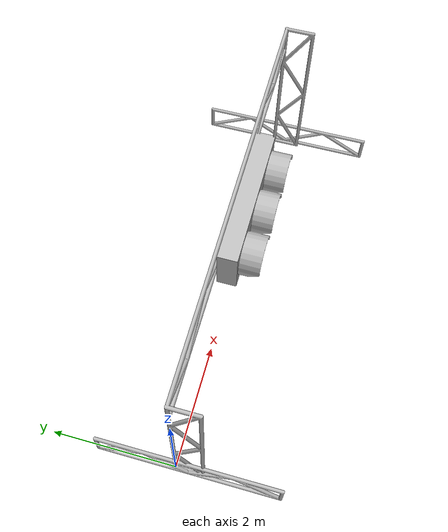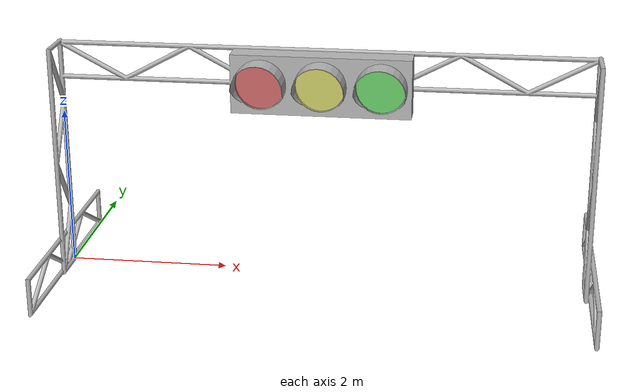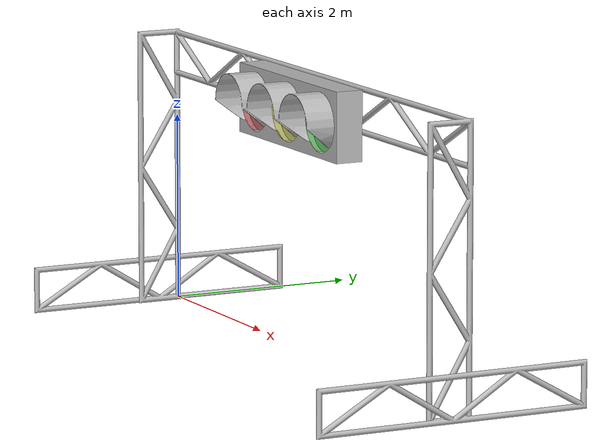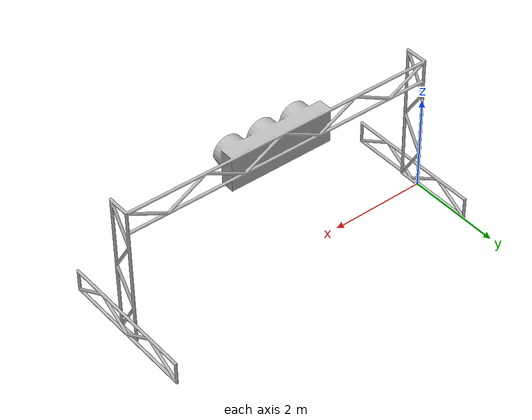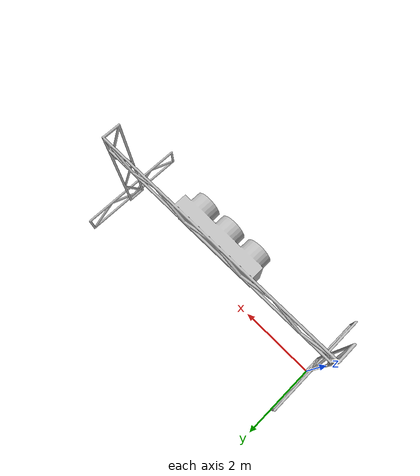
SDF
<?xml version='1.0'?>
<sdf version='1.7'>

  <model name="traffic">
    <static>true</static>

    <!-- 신호등 본체 -->
    <link name="traffic_light_body">
      <visual name="traffic_light_visual">
        <geometry>
          <mesh>
            <uri>model://traffic/meshes/traffic.obj</uri>
            <scale>0.029 0.029 0.029</scale>
          </mesh>
        </geometry>
      </visual>
    </link>

    <!-- 빨간 불빛 -->
    <link name="red_light_link">
      <pose>2.535 -0.28 2.538 1.57 0 0</pose>
      <light name="red_spot" type="spot">
        <pose>0 -0.12 -0.28 2.469999 0 0</pose>
        <attenuation>
          <range>30</range>
          <linear>0.05</linear>
        </attenuation>
        <diffuse>0.5 1 1 1</diffuse>
        <specular>1 1 1 1</specular>
        <spot>
          <inner_angle>0.3</inner_angle>
          <outer_angle>1.35</outer_angle>
          <falloff>1</falloff>
        </spot>
        <direction>0 0 -1</direction>
      </light>

      <visual name="red">
        <geometry>
          <cylinder>
            <radius>0.3</radius>
            <length>0.1</length>
          </cylinder>
          <sphere>
            <radius>0.4</radius>
          </sphere>
        </geometry>
        <transparency>0.6</transparency>
        <material>
          <ambient> 1 0 0 1</ambient>
          <diffuse> 1 0 0 1</diffuse>
          <specular>1 1 1 1</specular>
          <emissive>1 0 0 1</emissive>
      </material>
      </visual>
    </link>

    <!-- 노란 불빛 -->
    <link name="yellow_light_link">
      <pose>3.26 -0.293 2.538 1.57 0 0</pose>
      <light name="yellow_spot" type="spot">
        <pose>0 -0.12 -0.28 2.469999 0 0</pose>
        <attenuation>
          <range>30</range>
          <linear>0.05</linear>
        </attenuation>
        <diffuse>0.5 1 1 1</diffuse>
        <specular>1 1 1 1</specular>
        <spot>
          <inner_angle>0.3</inner_angle>
          <outer_angle>1.35</outer_angle>
          <falloff>1</falloff>
        </spot>
        <direction>0 0 -1</direction>
      </light>
      <visual name="yellow">
        <geometry>
          <cylinder>
            <radius>0.30</radius>
            <length>0.1</length>
          </cylinder>
          <sphere>
            <radius>0.4</radius>
          </sphere>
        </geometry>
        <transparency>0.6</transparency>
        <material>
          <ambient>1 1 0 1</ambient>
          <diffuse>1 1 0 1</diffuse>
          <specular>1 1 1 1</specular>
          <emissive>1 1 0 1 </emissive>
        </material>
      </visual>
    </link>

    <!-- 초록 불빛 -->
    <link name="green_light_link">
      <pose>3.984 -0.28 2.538  1.57 0 0</pose>
      <light name="green_spot" type="spot">
        <pose>0 -0.12 -0.28 2.469999 0 0</pose>
        <attenuation>
          <range>30</range>
          <linear>0.05</linear>
        </attenuation>
        <diffuse>0.5 1 1 1</diffuse>
        <specular>1 1 1 1</specular>
        <spot>
          <inner_angle>0.3</inner_angle>
          <outer_angle>1.35</outer_angle>
          <falloff>1</falloff>
        </spot>
        <direction>0 0 -1</direction>
      </light>

      <visual name="green">
        <geometry>
          <cylinder>
            <radius>0.30</radius>
            <length>0.1</length>
          </cylinder>
          <sphere>
            <radius>0.4</radius>
          </sphere>
        </geometry>
        <transparency>0.6</transparency>
        <material>
          <ambient>0 1 0 1</ambient>
          <diffuse>0 1 0 1</diffuse>
          <specular>1 1 1 1</specular>
          <emissive>0 1 0 1</emissive>
        </material>
      </visual>
    </link>

    <!-- https://classic.gazebosim.org/tutorials?tut=flashlight_plugin -->
    <plugin name="red_light_controller" filename="libLedPlugin.so">
      <enable>true</enable>
      <light>
        <id>red_light_link/red</id>
        <block>
          <duration>5</duration> <!-- 빨간불의 지속 시간 5초 -->
          <interval>0</interval>
          <color>1 0 0</color>   <!-- 빨간색 -->
        </block>
        <block>
          <duration>0</duration>
          <interval>10</interval> <!-- 다음 간격까지 10초 -->
        </block>
        <enable>true</enable>
      </light>
    </plugin>

    <plugin name="yellow_light_controller" filename="libLedPlugin.so">
      <enable>true</enable>
      <light>
        <id>yellow_light_link/yellow</id>
        <block>
            <duration>0</duration>
            <interval>9</interval>
            <color>1 1 0</color>
        </block>
        <block>
            <duration>6</duration>
            <interval>0</interval>
        </block>
        <enable>true</enable>
      </light>
    </plugin>

    <plugin name="green_light_controller" filename="libLedPlugin.so">
      <enable>true</enable>
      <light>
        <id>green_light_link/green</id>
        <block>
            <duration>0</duration>
            <interval>5</interval>
            <color>0 1 0</color>
        </block>
        <block>
            <duration>10</duration>
            <interval>0</interval>
        </block>
        <enable>true</enable>
      </light>
    </plugin>

  </model>
</sdf>
